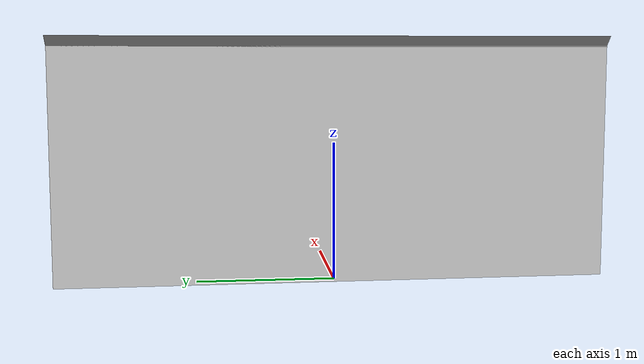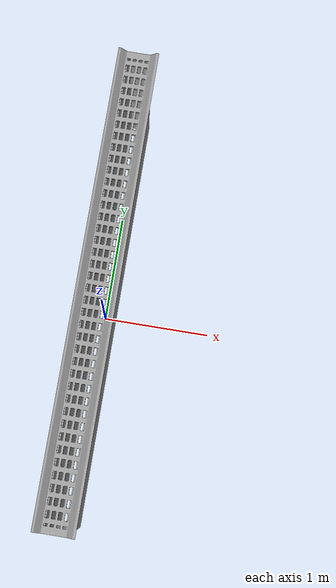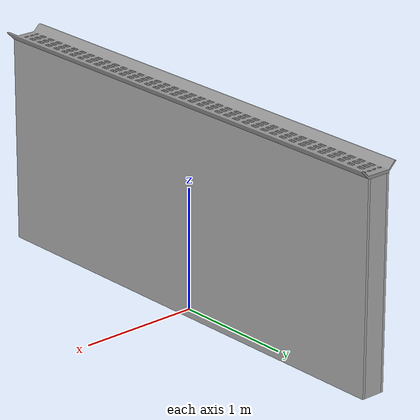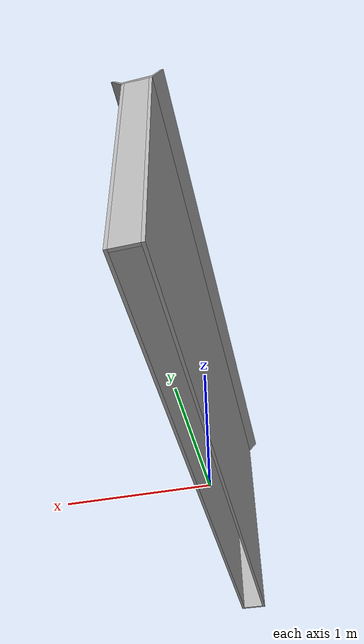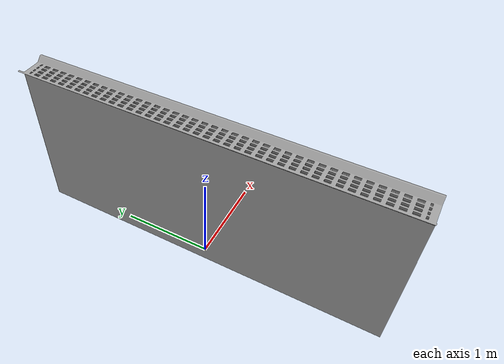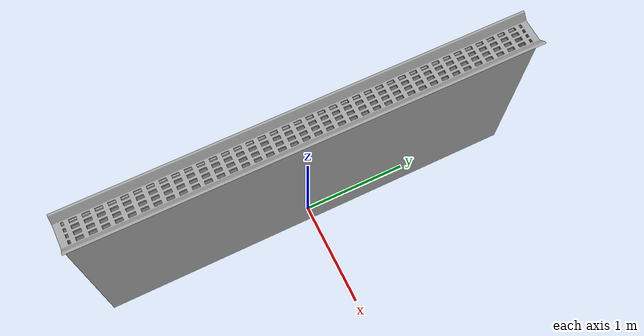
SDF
<?xml version='1.0'?>
<sdf version='1.6'>
  <model name='DropWall_Gazebo'>
    <link name='link_0'>
      <pose frame=''>-0 -0 0.85 0 -0 0</pose>
      <inertial>
        <mass>1</mass>
        <inertia>
          <ixx>1.57416667</ixx>
          <ixy>0</ixy>
          <ixz>0</ixz>
          <iyy>0.24416667</iyy>
			    <iyz>0</iyz>
          <izz>1.33666667</izz>
        </inertia>
        <pose frame=''>0 0 0 0 -0 0</pose>
      </inertial>
      <gravity>1</gravity>
      <self_collide>0</self_collide>
      <kinematic>0</kinematic>
      <visual name='ModelPreview_0::link_0::visual_1'>
        <pose frame=''>0.09 0 0 0 -0 0</pose>
        <geometry>
          <box>
            <size>0.02 4 1.7</size>
          </box>
        </geometry>
        <material>
          <lighting>1</lighting>
          <script>
            <uri>model://DropWall/materials/scripts</uri>
            <uri>model://DropWall/materials/textures</uri>
            <name>DropWallDown</name>
          </script>
          <ambient>0.3 0.3 0.3 1</ambient>
          <diffuse>0.7 0.7 0.7 1</diffuse>
          <specular>0.01 0.01 0.01 1</specular>
          <emissive>0 0 0 1</emissive>
          <shader type='vertex'>
            <normal_map>__default__</normal_map>
          </shader>
        </material>
        <cast_shadows>1</cast_shadows>
        <transparency>0</transparency>
      </visual>
      <visual name='ModelPreview_0::link_0::visual_2'>
        <pose frame=''>0 -1.99 0 0 -0 0</pose>
        <geometry>
          <box>
            <size>0.16 0.02 1.7</size>
          </box>
        </geometry>
        <material>
          <lighting>1</lighting>
          <script>
            <uri>model://DropWall/materials/scripts</uri>
            <uri>model://DropWall/materials/textures</uri>
            <name>DropWallDown_lat</name>
          </script>
          <ambient>0.3 0.3 0.3 1</ambient>
          <diffuse>0.7 0.7 0.7 1</diffuse>
          <specular>0.01 0.01 0.01 1</specular>
          <emissive>0 0 0 1</emissive>
          <shader type='vertex'>
            <normal_map>__default__</normal_map>
          </shader>
        </material>
        <cast_shadows>1</cast_shadows>
        <transparency>0</transparency>
      </visual>
      <visual name='ModelPreview_0::link_0::visual_3'>
        <pose frame=''>0 1.99 0 0 -0 0</pose>
        <geometry>
          <box>
            <size>0.16 0.02 1.7</size>
          </box>
        </geometry>
        <material>
          <lighting>1</lighting>
          <script>
            <uri>model://DropWall/materials/scripts</uri>
            <uri>model://DropWall/materials/textures</uri>
            <name>DropWallDown_lat</name>
          </script>
          <ambient>0.3 0.3 0.3 1</ambient>
          <diffuse>0.7 0.7 0.7 1</diffuse>
          <specular>0.01 0.01 0.01 1</specular>
          <emissive>0 0 0 1</emissive>
          <shader type='vertex'>
            <normal_map>__default__</normal_map>
          </shader>
        </material>
        <cast_shadows>1</cast_shadows>
        <transparency>0</transparency>
      </visual>
      <visual name='visual'>
        <pose frame=''>-0.09 0 0 0 -0 0</pose>
        <geometry>
          <box>
            <size>0.02 4 1.7</size>
          </box>
        </geometry>
        <material>
          <lighting>1</lighting>
          <script>
            <uri>model://DropWall/materials/scripts</uri>
            <uri>model://DropWall/materials/textures</uri>
            <name>DropWallDown</name>
          </script>
          <ambient>0.3 0.3 0.3 1</ambient>
          <diffuse>0.7 0.7 0.7 1</diffuse>
          <specular>0.01 0.01 0.01 1</specular>
          <emissive>0 0 0 1</emissive>
          <shader type='vertex'>
            <normal_map>__default__</normal_map>
          </shader>
        </material>
        <cast_shadows>1</cast_shadows>
        <transparency>0</transparency>
      </visual>
      <visual name='visual_UP'>
        <pose frame=''>0 -1.6 -0.85 0 -0 0</pose>
        <geometry>
          <mesh>
            <uri>model://DropWall/meshes/DropWallUp.stl</uri>
            <scale>0.01 0.02 0.01</scale>
          </mesh>
        </geometry>
        <material>
          <lighting>1</lighting>
          <script>
            <uri>model://DropWall/materials/scripts</uri>
            <uri>model://DropWall/materials/textures</uri>
            <name>Gazebo/Grey</name>
          </script>
          <ambient>0.3 0.3 0.3 1</ambient>
          <diffuse>0.7 0.7 0.7 1</diffuse>
          <specular>0.01 0.01 0.01 1</specular>
          <emissive>0 0 0 1</emissive>
          <shader type='vertex'>
            <normal_map>__default__</normal_map>
          </shader>
        </material>
        <cast_shadows>1</cast_shadows>
        <transparency>0</transparency>
      </visual>
      <collision name='collision_1'>
        <laser_retro>0</laser_retro>
        <max_contacts>10</max_contacts>
        <pose frame=''>-0.09 0 0 0 -0 0</pose>
        <geometry>
          <box>
            <size>0.02 4 1.7</size>
          </box>
        </geometry>
        <surface>
          <friction>
            <ode>
              <mu>1</mu>
              <mu2>1</mu2>
              <fdir1>0 0 0</fdir1>
              <slip1>0</slip1>
              <slip2>0</slip2>
            </ode>
            <torsional>
              <coefficient>1</coefficient>
              <patch_radius>0</patch_radius>
              <surface_radius>0</surface_radius>
              <use_patch_radius>1</use_patch_radius>
              <ode>
                <slip>0</slip>
              </ode>
            </torsional>
          </friction>
          <bounce>
            <restitution_coefficient>0</restitution_coefficient>
            <threshold>1e+06</threshold>
          </bounce>
          <contact>
            <collide_without_contact>0</collide_without_contact>
            <collide_without_contact_bitmask>1</collide_without_contact_bitmask>
            <collide_bitmask>1</collide_bitmask>
            <ode>
              <soft_cfm>0</soft_cfm>
              <soft_erp>0.2</soft_erp>
              <kp>1e+13</kp>
              <kd>1</kd>
              <max_vel>0.01</max_vel>
              <min_depth>0</min_depth>
            </ode>
            <bullet>
              <split_impulse>1</split_impulse>
              <split_impulse_penetration_threshold>-0.01</split_impulse_penetration_threshold>
              <soft_cfm>0</soft_cfm>
              <soft_erp>0.2</soft_erp>
              <kp>1e+13</kp>
              <kd>1</kd>
            </bullet>
          </contact>
        </surface>
      </collision>
      <collision name='collision'>
        <laser_retro>0</laser_retro>
        <max_contacts>10</max_contacts>
        <pose frame=''>0.09 0 0 0 -0 0</pose>
        <geometry>
          <box>
            <size>0.02 4 1.7</size>
          </box>
        </geometry>
        <surface>
          <friction>
            <ode>
              <mu>1</mu>
              <mu2>1</mu2>
              <fdir1>0 0 0</fdir1>
              <slip1>0</slip1>
              <slip2>0</slip2>
            </ode>
            <torsional>
              <coefficient>1</coefficient>
              <patch_radius>0</patch_radius>
              <surface_radius>0</surface_radius>
              <use_patch_radius>1</use_patch_radius>
              <ode>
                <slip>0</slip>
              </ode>
            </torsional>
          </friction>
          <bounce>
            <restitution_coefficient>0</restitution_coefficient>
            <threshold>1e+06</threshold>
          </bounce>
          <contact>
            <collide_without_contact>0</collide_without_contact>
            <collide_without_contact_bitmask>1</collide_without_contact_bitmask>
            <collide_bitmask>1</collide_bitmask>
            <ode>
              <soft_cfm>0</soft_cfm>
              <soft_erp>0.2</soft_erp>
              <kp>1e+13</kp>
              <kd>1</kd>
              <max_vel>0.01</max_vel>
              <min_depth>0</min_depth>
            </ode>
            <bullet>
              <split_impulse>1</split_impulse>
              <split_impulse_penetration_threshold>-0.01</split_impulse_penetration_threshold>
              <soft_cfm>0</soft_cfm>
              <soft_erp>0.2</soft_erp>
              <kp>1e+13</kp>
              <kd>1</kd>
            </bullet>
          </contact>
        </surface>
      </collision>
      <collision name='collision_2'>
        <laser_retro>0</laser_retro>
        <max_contacts>10</max_contacts>
        <pose frame=''>0 -1.99 0 0 -0 0</pose>
        <geometry>
          <box>
            <size>0.16 0.02 1.7</size>
          </box>
        </geometry>
        <surface>
          <friction>
            <ode>
              <mu>1</mu>
              <mu2>1</mu2>
              <fdir1>0 0 0</fdir1>
              <slip1>0</slip1>
              <slip2>0</slip2>
            </ode>
            <torsional>
              <coefficient>1</coefficient>
              <patch_radius>0</patch_radius>
              <surface_radius>0</surface_radius>
              <use_patch_radius>1</use_patch_radius>
              <ode>
                <slip>0</slip>
              </ode>
            </torsional>
          </friction>
          <bounce>
            <restitution_coefficient>0</restitution_coefficient>
            <threshold>1e+06</threshold>
          </bounce>
          <contact>
            <collide_without_contact>0</collide_without_contact>
            <collide_without_contact_bitmask>1</collide_without_contact_bitmask>
            <collide_bitmask>1</collide_bitmask>
            <ode>
              <soft_cfm>0</soft_cfm>
              <soft_erp>0.2</soft_erp>
              <kp>1e+13</kp>
              <kd>1</kd>
              <max_vel>0.01</max_vel>
              <min_depth>0</min_depth>
            </ode>
            <bullet>
              <split_impulse>1</split_impulse>
              <split_impulse_penetration_threshold>-0.01</split_impulse_penetration_threshold>
              <soft_cfm>0</soft_cfm>
              <soft_erp>0.2</soft_erp>
              <kp>1e+13</kp>
              <kd>1</kd>
            </bullet>
          </contact>
        </surface>
      </collision>
      <collision name='collision_3'>
        <laser_retro>0</laser_retro>
        <max_contacts>10</max_contacts>
        <pose frame=''>0 1.99 0 0 -0 0</pose>
        <geometry>
          <box>
            <size>0.16 0.02 1.7</size>
          </box>
        </geometry>
        <surface>
          <friction>
            <ode>
              <mu>1</mu>
              <mu2>1</mu2>
              <fdir1>0 0 0</fdir1>
              <slip1>0</slip1>
              <slip2>0</slip2>
            </ode>
            <torsional>
              <coefficient>1</coefficient>
              <patch_radius>0</patch_radius>
              <surface_radius>0</surface_radius>
              <use_patch_radius>1</use_patch_radius>
              <ode>
                <slip>0</slip>
              </ode>
            </torsional>
          </friction>
          <bounce>
            <restitution_coefficient>0</restitution_coefficient>
            <threshold>1e+06</threshold>
          </bounce>
          <contact>
            <collide_without_contact>0</collide_without_contact>
            <collide_without_contact_bitmask>1</collide_without_contact_bitmask>
            <collide_bitmask>1</collide_bitmask>
            <ode>
              <soft_cfm>0</soft_cfm>
              <soft_erp>0.2</soft_erp>
              <kp>1e+13</kp>
              <kd>1</kd>
              <max_vel>0.01</max_vel>
              <min_depth>0</min_depth>
            </ode>
            <bullet>
              <split_impulse>1</split_impulse>
              <split_impulse_penetration_threshold>-0.01</split_impulse_penetration_threshold>
              <soft_cfm>0</soft_cfm>
              <soft_erp>0.2</soft_erp>
              <kp>1e+13</kp>
              <kd>1</kd>
            </bullet>
          </contact>
        </surface>
      </collision>
      <collision name='collision_UP'>
        <laser_retro>0</laser_retro>
        <max_contacts>10</max_contacts>
        <pose frame=''>0 -1.6 -0.85 0 -0 0</pose>
        <geometry>
          <mesh>
            <uri>model://DropWall/meshes/DropWallUp.stl</uri>
            <scale>0.01 0.02 0.01</scale>
          </mesh>
        </geometry>
        <surface>
          <friction>
            <ode>
              <mu>1</mu>
              <mu2>1</mu2>
              <fdir1>0 0 0</fdir1>
              <slip1>0</slip1>
              <slip2>0</slip2>
            </ode>
            <torsional>
              <coefficient>1</coefficient>
              <patch_radius>0</patch_radius>
              <surface_radius>0</surface_radius>
              <use_patch_radius>1</use_patch_radius>
              <ode>
                <slip>0</slip>
              </ode>
            </torsional>
          </friction>
          <bounce>
            <restitution_coefficient>0</restitution_coefficient>
            <threshold>1e+06</threshold>
          </bounce>
          <contact>
            <collide_without_contact>0</collide_without_contact>
            <collide_without_contact_bitmask>1</collide_without_contact_bitmask>
            <collide_bitmask>1</collide_bitmask>
            <ode>
              <soft_cfm>0</soft_cfm>
              <soft_erp>0.2</soft_erp>
              <kp>1e+13</kp>
              <kd>1</kd>
              <max_vel>0.01</max_vel>
              <min_depth>0</min_depth>
            </ode>
            <bullet>
              <split_impulse>1</split_impulse>
              <split_impulse_penetration_threshold>-0.01</split_impulse_penetration_threshold>
              <soft_cfm>0</soft_cfm>
              <soft_erp>0.2</soft_erp>
              <kp>1e+13</kp>
              <kd>1</kd>
            </bullet>
          </contact>
        </surface>
      </collision>
    </link>
    <static>1</static>
    <allow_auto_disable>1</allow_auto_disable>
  </model>
</sdf>
